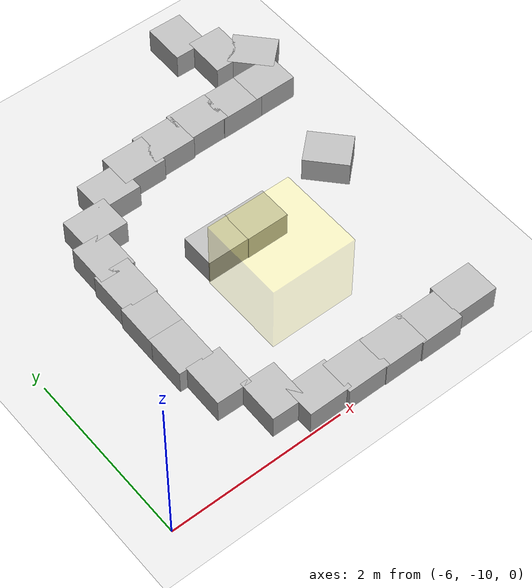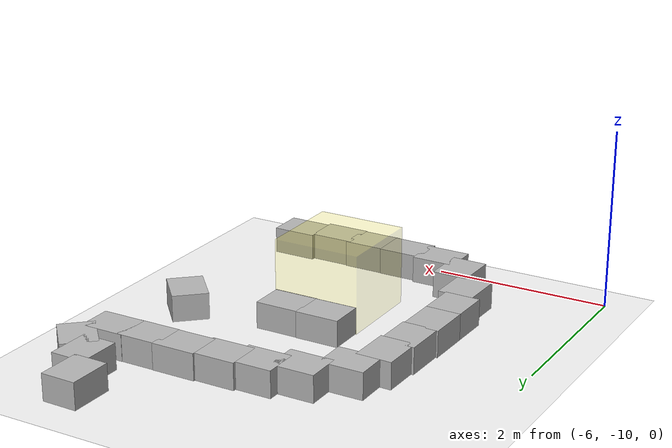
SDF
<sdf version="1.6">
 <world name="default">
  <model name="ground_plane">
   <static>1</static>
   <link name="link">
    <collision name="collision">
     <geometry><plane><normal>0 0 1</normal><size>100 100</size></plane></geometry>
     <surface>
      <contact><collide_bitmask>65535</collide_bitmask></contact>
      <friction><ode><mu>100</mu><mu2>50</mu2></ode></friction>
     </surface>
    </collision>
    <visual name="visual">
     <cast_shadows>0</cast_shadows>
     <geometry><plane><normal>0 0 1</normal><size>100 100</size></plane></geometry>
     <material>
      <script><uri>file://media/materials/scripts/gazebo.material</uri><name>Gazebo/Grey</name></script>
     </material>
    </visual>
   </link>
   <pose>0.215037 0.234206 0 0 -0 0</pose>
  </model>
  <model name="box_clone_3_clone_clone_3">
   <link name="cardboard_box_clone::link">
    <inertial>
     <mass>2</mass>
     <inertia>
      <ixx>0.0416667</ixx>
      <ixy>0</ixy>
      <ixz>0</ixz>
      <iyy>0.0566667</iyy>
      <iyz>0</iyz>
      <izz>0.0683333</izz>
     </inertia>
    </inertial>
    <visual name="visual">
     <pose>0 0 -0.15 0 -0 0</pose>
     <geometry>
      <mesh><uri>model://cardboard_box/meshes/cardboard_box.dae</uri><scale>1.25932 1.00745 0.755591</scale></mesh>
     </geometry>
    </visual>
    <collision name="collision">
     <geometry><box><size>0.5 0.4 0.3</size></box></geometry>
     <surface>
      <friction>
       <ode><mu>1</mu><mu2>1</mu2><fdir1>0 0 0</fdir1><slip1>0</slip1><slip2>0</slip2></ode>
       <torsional>
        <coefficient>1</coefficient>
        <patch_radius>0</patch_radius>
        <surface_radius>0</surface_radius>
        <use_patch_radius>1</use_patch_radius>
        <ode><slip>0</slip></ode>
       </torsional>
      </friction>
      <bounce><restitution_coefficient>0</restitution_coefficient><threshold>1e+06</threshold></bounce>
      <contact>
       <collide_without_contact>0</collide_without_contact>
       <collide_without_contact_bitmask>1</collide_without_contact_bitmask>
       <collide_bitmask>1</collide_bitmask>
       <ode>
        <soft_cfm>0</soft_cfm>
        <soft_erp>0.2</soft_erp>
        <kp>1e+07</kp>
        <kd>1</kd>
        <max_vel>0.1</max_vel>
        <min_depth>0.001</min_depth>
       </ode>
       <bullet>
        <split_impulse>1</split_impulse>
        <split_impulse_penetration_threshold>-0.01</split_impulse_penetration_threshold>
        <soft_cfm>0</soft_cfm>
        <soft_erp>0.2</soft_erp>
        <kp>1e+07</kp>
        <kd>1</kd>
       </bullet>
      </contact>
     </surface>
    </collision>
   </link>
   <static>1</static>
   <pose>-2.35637 -5.37175 0.149 0 -0 1.55153</pose>
  </model>
  <model name="box_clone_3_clone_clone_4">
   <link name="cardboard_box_clone::link">
    <inertial>
     <mass>2</mass>
     <inertia>
      <ixx>0.0416667</ixx>
      <ixy>0</ixy>
      <ixz>0</ixz>
      <iyy>0.0566667</iyy>
      <iyz>0</iyz>
      <izz>0.0683333</izz>
     </inertia>
    </inertial>
    <visual name="visual">
     <pose>0 0 -0.15 0 -0 0</pose>
     <geometry>
      <mesh><uri>model://cardboard_box/meshes/cardboard_box.dae</uri><scale>1.25932 1.00745 0.755591</scale></mesh>
     </geometry>
    </visual>
    <collision name="collision">
     <geometry><box><size>0.5 0.4 0.3</size></box></geometry>
     <surface>
      <friction>
       <ode><mu>1</mu><mu2>1</mu2><fdir1>0 0 0</fdir1><slip1>0</slip1><slip2>0</slip2></ode>
       <torsional>
        <coefficient>1</coefficient>
        <patch_radius>0</patch_radius>
        <surface_radius>0</surface_radius>
        <use_patch_radius>1</use_patch_radius>
        <ode><slip>0</slip></ode>
       </torsional>
      </friction>
      <bounce><restitution_coefficient>0</restitution_coefficient><threshold>1e+06</threshold></bounce>
      <contact>
       <collide_without_contact>0</collide_without_contact>
       <collide_without_contact_bitmask>1</collide_without_contact_bitmask>
       <collide_bitmask>1</collide_bitmask>
       <ode>
        <soft_cfm>0</soft_cfm>
        <soft_erp>0.2</soft_erp>
        <kp>1e+07</kp>
        <kd>1</kd>
        <max_vel>0.1</max_vel>
        <min_depth>0.001</min_depth>
       </ode>
       <bullet>
        <split_impulse>1</split_impulse>
        <split_impulse_penetration_threshold>-0.01</split_impulse_penetration_threshold>
        <soft_cfm>0</soft_cfm>
        <soft_erp>0.2</soft_erp>
        <kp>1e+07</kp>
        <kd>1</kd>
       </bullet>
      </contact>
     </surface>
    </collision>
   </link>
   <static>1</static>
   <pose>-2.13835 -5.78726 0.149 0 -0 1.55153</pose>
  </model>
  <model name="box_clone_3_clone_clone_clone_3_clone_clone_clone_0">
   <link name="cardboard_box_clone::link">
    <inertial>
     <mass>2</mass>
     <inertia>
      <ixx>0.0416667</ixx>
      <ixy>0</ixy>
      <ixz>0</ixz>
      <iyy>0.0566667</iyy>
      <iyz>0</iyz>
      <izz>0.0683333</izz>
     </inertia>
    </inertial>
    <visual name="visual">
     <pose>0 0 -0.15 0 -0 0</pose>
     <geometry>
      <mesh><uri>model://cardboard_box/meshes/cardboard_box.dae</uri><scale>1.25932 1.00745 0.755591</scale></mesh>
     </geometry>
    </visual>
    <collision name="collision">
     <geometry><box><size>0.5 0.4 0.3</size></box></geometry>
     <surface>
      <friction>
       <ode><mu>1</mu><mu2>1</mu2><fdir1>0 0 0</fdir1><slip1>0</slip1><slip2>0</slip2></ode>
       <torsional>
        <coefficient>1</coefficient>
        <patch_radius>0</patch_radius>
        <surface_radius>0</surface_radius>
        <use_patch_radius>1</use_patch_radius>
        <ode><slip>0</slip></ode>
       </torsional>
      </friction>
      <bounce><restitution_coefficient>0</restitution_coefficient><threshold>1e+06</threshold></bounce>
      <contact>
       <collide_without_contact>0</collide_without_contact>
       <collide_without_contact_bitmask>1</collide_without_contact_bitmask>
       <collide_bitmask>1</collide_bitmask>
       <ode>
        <soft_cfm>0</soft_cfm>
        <soft_erp>0.2</soft_erp>
        <kp>1e+07</kp>
        <kd>1</kd>
        <max_vel>0.1</max_vel>
        <min_depth>0.001</min_depth>
       </ode>
       <bullet>
        <split_impulse>1</split_impulse>
        <split_impulse_penetration_threshold>-0.01</split_impulse_penetration_threshold>
        <soft_cfm>0</soft_cfm>
        <soft_erp>0.2</soft_erp>
        <kp>1e+07</kp>
        <kd>1</kd>
       </bullet>
      </contact>
     </surface>
    </collision>
   </link>
   <static>1</static>
   <pose>-1.86034 -6.04029 0.149 0 -0 2.31083</pose>
  </model>
  <model name="box_clone_9_clone">
   <link name="cardboard_box_clone::link">
    <inertial>
     <mass>2</mass>
     <inertia>
      <ixx>0.0416667</ixx>
      <ixy>0</ixy>
      <ixz>0</ixz>
      <iyy>0.0566667</iyy>
      <iyz>0</iyz>
      <izz>0.0683333</izz>
     </inertia>
    </inertial>
    <visual name="visual">
     <pose>0 0 -0.15 0 -0 0</pose>
     <geometry>
      <mesh><uri>model://cardboard_box/meshes/cardboard_box.dae</uri><scale>1.25932 1.00745 0.755591</scale></mesh>
     </geometry>
    </visual>
    <collision name="collision">
     <geometry><box><size>0.5 0.4 0.3</size></box></geometry>
     <surface>
      <friction>
       <ode><mu>1</mu><mu2>1</mu2><fdir1>0 0 0</fdir1><slip1>0</slip1><slip2>0</slip2></ode>
       <torsional>
        <coefficient>1</coefficient>
        <patch_radius>0</patch_radius>
        <surface_radius>0</surface_radius>
        <use_patch_radius>1</use_patch_radius>
        <ode><slip>0</slip></ode>
       </torsional>
      </friction>
      <bounce><restitution_coefficient>0</restitution_coefficient><threshold>1e+06</threshold></bounce>
      <contact>
       <collide_without_contact>0</collide_without_contact>
       <collide_without_contact_bitmask>1</collide_without_contact_bitmask>
       <collide_bitmask>1</collide_bitmask>
       <ode>
        <soft_cfm>0</soft_cfm>
        <soft_erp>0.2</soft_erp>
        <kp>1e+07</kp>
        <kd>1</kd>
        <max_vel>0.1</max_vel>
        <min_depth>0.001</min_depth>
       </ode>
       <bullet>
        <split_impulse>1</split_impulse>
        <split_impulse_penetration_threshold>-0.01</split_impulse_penetration_threshold>
        <soft_cfm>0</soft_cfm>
        <soft_erp>0.2</soft_erp>
        <kp>1e+07</kp>
        <kd>1</kd>
       </bullet>
      </contact>
     </surface>
    </collision>
   </link>
   <static>1</static>
   <pose>-2.02375 -6.4146 0.149 0 -0 0</pose>
  </model>
  <model name="RegionEventBox_clone_0_clone_clone_0_clone_clone_clone">
   <static>1</static>
   <pose>-3.49818 -8.49725 0 0 -0 0</pose>
   <link name="link">
    <visual name="visual">
     <transparency>0.75</transparency>
     <geometry><box><size>1 1 1.75</size></box></geometry>
     <material>
      <script><uri>file://media/materials/scripts/gazebo.material</uri><name>Gazebo/Yellow</name></script>
     </material>
    </visual>
   </link>
   <plugin name="region_event_box" filename="libRegionEventBoxPlugin.so">
    <event><name>model_in_region_event_box</name><type>inclusion</type><active>1</active></event>
   </plugin>
  </model>
  <model name="box_clone_3_clone_clone_clone_3_clone_clone_clone_2_clone">
   <link name="cardboard_box_clone::link">
    <inertial>
     <mass>2</mass>
     <inertia>
      <ixx>0.0416667</ixx>
      <ixy>0</ixy>
      <ixz>0</ixz>
      <iyy>0.0566667</iyy>
      <iyz>0</iyz>
      <izz>0.0683333</izz>
     </inertia>
    </inertial>
    <visual name="visual">
     <pose>0 0 -0.15 0 -0 0</pose>
     <geometry>
      <mesh><uri>model://cardboard_box/meshes/cardboard_box.dae</uri><scale>1.25932 1.00745 0.755591</scale></mesh>
     </geometry>
    </visual>
    <collision name="collision">
     <geometry><box><size>0.5 0.4 0.3</size></box></geometry>
     <surface>
      <friction>
       <ode><mu>1</mu><mu2>1</mu2><fdir1>0 0 0</fdir1><slip1>0</slip1><slip2>0</slip2></ode>
       <torsional>
        <coefficient>1</coefficient>
        <patch_radius>0</patch_radius>
        <surface_radius>0</surface_radius>
        <use_patch_radius>1</use_patch_radius>
        <ode><slip>0</slip></ode>
       </torsional>
      </friction>
      <bounce><restitution_coefficient>0</restitution_coefficient><threshold>1e+06</threshold></bounce>
      <contact>
       <collide_without_contact>0</collide_without_contact>
       <collide_without_contact_bitmask>1</collide_without_contact_bitmask>
       <collide_bitmask>1</collide_bitmask>
       <ode>
        <soft_cfm>0</soft_cfm>
        <soft_erp>0.2</soft_erp>
        <kp>1e+07</kp>
        <kd>1</kd>
        <max_vel>0.1</max_vel>
        <min_depth>0.001</min_depth>
       </ode>
       <bullet>
        <split_impulse>1</split_impulse>
        <split_impulse_penetration_threshold>-0.01</split_impulse_penetration_threshold>
        <soft_cfm>0</soft_cfm>
        <soft_erp>0.2</soft_erp>
        <kp>1e+07</kp>
        <kd>1</kd>
       </bullet>
      </contact>
     </surface>
    </collision>
   </link>
   <static>1</static>
   <pose>-2.12273 -7.59657 0.149 0 -0 2.31083</pose>
  </model>
  <model name="box_clone_12">
   <link name="cardboard_box_clone::link">
    <inertial>
     <mass>2</mass>
     <inertia>
      <ixx>0.0416667</ixx>
      <ixy>0</ixy>
      <ixz>0</ixz>
      <iyy>0.0566667</iyy>
      <iyz>0</iyz>
      <izz>0.0683333</izz>
     </inertia>
    </inertial>
    <visual name="visual">
     <pose>0 0 -0.15 0 -0 0</pose>
     <geometry>
      <mesh><uri>model://cardboard_box/meshes/cardboard_box.dae</uri><scale>1.25932 1.00745 0.755591</scale></mesh>
     </geometry>
    </visual>
    <collision name="collision">
     <geometry><box><size>0.5 0.4 0.3</size></box></geometry>
     <surface>
      <friction>
       <ode><mu>1</mu><mu2>1</mu2><fdir1>0 0 0</fdir1><slip1>0</slip1><slip2>0</slip2></ode>
       <torsional>
        <coefficient>1</coefficient>
        <patch_radius>0</patch_radius>
        <surface_radius>0</surface_radius>
        <use_patch_radius>1</use_patch_radius>
        <ode><slip>0</slip></ode>
       </torsional>
      </friction>
      <bounce><restitution_coefficient>0</restitution_coefficient><threshold>1e+06</threshold></bounce>
      <contact>
       <collide_without_contact>0</collide_without_contact>
       <collide_without_contact_bitmask>1</collide_without_contact_bitmask>
       <collide_bitmask>1</collide_bitmask>
       <ode>
        <soft_cfm>0</soft_cfm>
        <soft_erp>0.2</soft_erp>
        <kp>1e+07</kp>
        <kd>1</kd>
        <max_vel>0.1</max_vel>
        <min_depth>0.001</min_depth>
       </ode>
       <bullet>
        <split_impulse>1</split_impulse>
        <split_impulse_penetration_threshold>-0.01</split_impulse_penetration_threshold>
        <soft_cfm>0</soft_cfm>
        <soft_erp>0.2</soft_erp>
        <kp>1e+07</kp>
        <kd>1</kd>
       </bullet>
      </contact>
     </surface>
    </collision>
   </link>
   <static>1</static>
   <pose>-2.4599 -6.41716 0.149 0 -0 0</pose>
  </model>
  <model name="box_clone_13">
   <link name="cardboard_box_clone::link">
    <inertial>
     <mass>2</mass>
     <inertia>
      <ixx>0.0416667</ixx>
      <ixy>0</ixy>
      <ixz>0</ixz>
      <iyy>0.0566667</iyy>
      <iyz>0</iyz>
      <izz>0.0683333</izz>
     </inertia>
    </inertial>
    <visual name="visual">
     <pose>0 0 -0.15 0 -0 0</pose>
     <geometry>
      <mesh><uri>model://cardboard_box/meshes/cardboard_box.dae</uri><scale>1.25932 1.00745 0.755591</scale></mesh>
     </geometry>
    </visual>
    <collision name="collision">
     <geometry><box><size>0.5 0.4 0.3</size></box></geometry>
     <surface>
      <friction>
       <ode><mu>1</mu><mu2>1</mu2><fdir1>0 0 0</fdir1><slip1>0</slip1><slip2>0</slip2></ode>
       <torsional>
        <coefficient>1</coefficient>
        <patch_radius>0</patch_radius>
        <surface_radius>0</surface_radius>
        <use_patch_radius>1</use_patch_radius>
        <ode><slip>0</slip></ode>
       </torsional>
      </friction>
      <bounce><restitution_coefficient>0</restitution_coefficient><threshold>1e+06</threshold></bounce>
      <contact>
       <collide_without_contact>0</collide_without_contact>
       <collide_without_contact_bitmask>1</collide_without_contact_bitmask>
       <collide_bitmask>1</collide_bitmask>
       <ode>
        <soft_cfm>0</soft_cfm>
        <soft_erp>0.2</soft_erp>
        <kp>1e+07</kp>
        <kd>1</kd>
        <max_vel>0.1</max_vel>
        <min_depth>0.001</min_depth>
       </ode>
       <bullet>
        <split_impulse>1</split_impulse>
        <split_impulse_penetration_threshold>-0.01</split_impulse_penetration_threshold>
        <soft_cfm>0</soft_cfm>
        <soft_erp>0.2</soft_erp>
        <kp>1e+07</kp>
        <kd>1</kd>
       </bullet>
      </contact>
     </surface>
    </collision>
   </link>
   <static>1</static>
   <pose>-2.90832 -6.41201 0.149 0 -0 0</pose>
  </model>
  <model name="box_clone_14">
   <link name="cardboard_box_clone::link">
    <inertial>
     <mass>2</mass>
     <inertia>
      <ixx>0.0416667</ixx>
      <ixy>0</ixy>
      <ixz>0</ixz>
      <iyy>0.0566667</iyy>
      <iyz>0</iyz>
      <izz>0.0683333</izz>
     </inertia>
    </inertial>
    <visual name="visual">
     <pose>0 0 -0.15 0 -0 0</pose>
     <geometry>
      <mesh><uri>model://cardboard_box/meshes/cardboard_box.dae</uri><scale>1.25932 1.00745 0.755591</scale></mesh>
     </geometry>
    </visual>
    <collision name="collision">
     <geometry><box><size>0.5 0.4 0.3</size></box></geometry>
     <surface>
      <friction>
       <ode><mu>1</mu><mu2>1</mu2><fdir1>0 0 0</fdir1><slip1>0</slip1><slip2>0</slip2></ode>
       <torsional>
        <coefficient>1</coefficient>
        <patch_radius>0</patch_radius>
        <surface_radius>0</surface_radius>
        <use_patch_radius>1</use_patch_radius>
        <ode><slip>0</slip></ode>
       </torsional>
      </friction>
      <bounce><restitution_coefficient>0</restitution_coefficient><threshold>1e+06</threshold></bounce>
      <contact>
       <collide_without_contact>0</collide_without_contact>
       <collide_without_contact_bitmask>1</collide_without_contact_bitmask>
       <collide_bitmask>1</collide_bitmask>
       <ode>
        <soft_cfm>0</soft_cfm>
        <soft_erp>0.2</soft_erp>
        <kp>1e+07</kp>
        <kd>1</kd>
        <max_vel>0.1</max_vel>
        <min_depth>0.001</min_depth>
       </ode>
       <bullet>
        <split_impulse>1</split_impulse>
        <split_impulse_penetration_threshold>-0.01</split_impulse_penetration_threshold>
        <soft_cfm>0</soft_cfm>
        <soft_erp>0.2</soft_erp>
        <kp>1e+07</kp>
        <kd>1</kd>
       </bullet>
      </contact>
     </surface>
    </collision>
   </link>
   <static>1</static>
   <pose>-3.36792 -6.43187 0.149 0 -0 0</pose>
  </model>
  <model name="box_clone_15">
   <link name="cardboard_box_clone::link">
    <inertial>
     <mass>2</mass>
     <inertia>
      <ixx>0.0416667</ixx>
      <ixy>0</ixy>
      <ixz>0</ixz>
      <iyy>0.0566667</iyy>
      <iyz>0</iyz>
      <izz>0.0683333</izz>
     </inertia>
    </inertial>
    <visual name="visual">
     <pose>0 0 -0.15 0 -0 0</pose>
     <geometry>
      <mesh><uri>model://cardboard_box/meshes/cardboard_box.dae</uri><scale>1.25932 1.00745 0.755591</scale></mesh>
     </geometry>
    </visual>
    <collision name="collision">
     <geometry><box><size>0.5 0.4 0.3</size></box></geometry>
     <surface>
      <friction>
       <ode><mu>1</mu><mu2>1</mu2><fdir1>0 0 0</fdir1><slip1>0</slip1><slip2>0</slip2></ode>
       <torsional>
        <coefficient>1</coefficient>
        <patch_radius>0</patch_radius>
        <surface_radius>0</surface_radius>
        <use_patch_radius>1</use_patch_radius>
        <ode><slip>0</slip></ode>
       </torsional>
      </friction>
      <bounce><restitution_coefficient>0</restitution_coefficient><threshold>1e+06</threshold></bounce>
      <contact>
       <collide_without_contact>0</collide_without_contact>
       <collide_without_contact_bitmask>1</collide_without_contact_bitmask>
       <collide_bitmask>1</collide_bitmask>
       <ode>
        <soft_cfm>0</soft_cfm>
        <soft_erp>0.2</soft_erp>
        <kp>1e+07</kp>
        <kd>1</kd>
        <max_vel>0.1</max_vel>
        <min_depth>0.001</min_depth>
       </ode>
       <bullet>
        <split_impulse>1</split_impulse>
        <split_impulse_penetration_threshold>-0.01</split_impulse_penetration_threshold>
        <soft_cfm>0</soft_cfm>
        <soft_erp>0.2</soft_erp>
        <kp>1e+07</kp>
        <kd>1</kd>
       </bullet>
      </contact>
     </surface>
    </collision>
   </link>
   <static>1</static>
   <pose>-3.7722 -6.46677 0.149 0 -0 0</pose>
  </model>
  <model name="box_clone_16">
   <link name="cardboard_box_clone::link">
    <inertial>
     <mass>2</mass>
     <inertia>
      <ixx>0.0416667</ixx>
      <ixy>0</ixy>
      <ixz>0</ixz>
      <iyy>0.0566667</iyy>
      <iyz>0</iyz>
      <izz>0.0683333</izz>
     </inertia>
    </inertial>
    <visual name="visual">
     <pose>0 0 -0.15 0 -0 0</pose>
     <geometry>
      <mesh><uri>model://cardboard_box/meshes/cardboard_box.dae</uri><scale>1.25932 1.00745 0.755591</scale></mesh>
     </geometry>
    </visual>
    <collision name="collision">
     <geometry><box><size>0.5 0.4 0.3</size></box></geometry>
     <surface>
      <friction>
       <ode><mu>1</mu><mu2>1</mu2><fdir1>0 0 0</fdir1><slip1>0</slip1><slip2>0</slip2></ode>
       <torsional>
        <coefficient>1</coefficient>
        <patch_radius>0</patch_radius>
        <surface_radius>0</surface_radius>
        <use_patch_radius>1</use_patch_radius>
        <ode><slip>0</slip></ode>
       </torsional>
      </friction>
      <bounce><restitution_coefficient>0</restitution_coefficient><threshold>1e+06</threshold></bounce>
      <contact>
       <collide_without_contact>0</collide_without_contact>
       <collide_without_contact_bitmask>1</collide_without_contact_bitmask>
       <collide_bitmask>1</collide_bitmask>
       <ode>
        <soft_cfm>0</soft_cfm>
        <soft_erp>0.2</soft_erp>
        <kp>1e+07</kp>
        <kd>1</kd>
        <max_vel>0.1</max_vel>
        <min_depth>0.001</min_depth>
       </ode>
       <bullet>
        <split_impulse>1</split_impulse>
        <split_impulse_penetration_threshold>-0.01</split_impulse_penetration_threshold>
        <soft_cfm>0</soft_cfm>
        <soft_erp>0.2</soft_erp>
        <kp>1e+07</kp>
        <kd>1</kd>
       </bullet>
      </contact>
     </surface>
    </collision>
   </link>
   <static>1</static>
   <pose>-4.18047 -6.58991 0.149 0 -0 0</pose>
  </model>
  <model name="box_clone_17">
   <link name="cardboard_box_clone::link">
    <inertial>
     <mass>2</mass>
     <inertia>
      <ixx>0.0416667</ixx>
      <ixy>0</ixy>
      <ixz>0</ixz>
      <iyy>0.0566667</iyy>
      <iyz>0</iyz>
      <izz>0.0683333</izz>
     </inertia>
    </inertial>
    <visual name="visual">
     <pose>0 0 -0.15 0 -0 0</pose>
     <geometry>
      <mesh><uri>model://cardboard_box/meshes/cardboard_box.dae</uri><scale>1.25932 1.00745 0.755591</scale></mesh>
     </geometry>
    </visual>
    <collision name="collision">
     <geometry><box><size>0.5 0.4 0.3</size></box></geometry>
     <surface>
      <friction>
       <ode><mu>1</mu><mu2>1</mu2><fdir1>0 0 0</fdir1><slip1>0</slip1><slip2>0</slip2></ode>
       <torsional>
        <coefficient>1</coefficient>
        <patch_radius>0</patch_radius>
        <surface_radius>0</surface_radius>
        <use_patch_radius>1</use_patch_radius>
        <ode><slip>0</slip></ode>
       </torsional>
      </friction>
      <bounce><restitution_coefficient>0</restitution_coefficient><threshold>1e+06</threshold></bounce>
      <contact>
       <collide_without_contact>0</collide_without_contact>
       <collide_without_contact_bitmask>1</collide_without_contact_bitmask>
       <collide_bitmask>1</collide_bitmask>
       <ode>
        <soft_cfm>0</soft_cfm>
        <soft_erp>0.2</soft_erp>
        <kp>1e+07</kp>
        <kd>1</kd>
        <max_vel>0.1</max_vel>
        <min_depth>0.001</min_depth>
       </ode>
       <bullet>
        <split_impulse>1</split_impulse>
        <split_impulse_penetration_threshold>-0.01</split_impulse_penetration_threshold>
        <soft_cfm>0</soft_cfm>
        <soft_erp>0.2</soft_erp>
        <kp>1e+07</kp>
        <kd>1</kd>
       </bullet>
      </contact>
     </surface>
    </collision>
   </link>
   <static>1</static>
   <pose>-4.56066 -6.88099 0.149 0 -0 0</pose>
  </model>
  <model name="box_clone_3_clone_clone_5">
   <link name="cardboard_box_clone::link">
    <inertial>
     <mass>2</mass>
     <inertia>
      <ixx>0.0416667</ixx>
      <ixy>0</ixy>
      <ixz>0</ixz>
      <iyy>0.0566667</iyy>
      <iyz>0</iyz>
      <izz>0.0683333</izz>
     </inertia>
    </inertial>
    <visual name="visual">
     <pose>0 0 -0.15 0 -0 0</pose>
     <geometry>
      <mesh><uri>model://cardboard_box/meshes/cardboard_box.dae</uri><scale>1.25932 1.00745 0.755591</scale></mesh>
     </geometry>
    </visual>
    <collision name="collision">
     <geometry><box><size>0.5 0.4 0.3</size></box></geometry>
     <surface>
      <friction>
       <ode><mu>1</mu><mu2>1</mu2><fdir1>0 0 0</fdir1><slip1>0</slip1><slip2>0</slip2></ode>
       <torsional>
        <coefficient>1</coefficient>
        <patch_radius>0</patch_radius>
        <surface_radius>0</surface_radius>
        <use_patch_radius>1</use_patch_radius>
        <ode><slip>0</slip></ode>
       </torsional>
      </friction>
      <bounce><restitution_coefficient>0</restitution_coefficient><threshold>1e+06</threshold></bounce>
      <contact>
       <collide_without_contact>0</collide_without_contact>
       <collide_without_contact_bitmask>1</collide_without_contact_bitmask>
       <collide_bitmask>1</collide_bitmask>
       <ode>
        <soft_cfm>0</soft_cfm>
        <soft_erp>0.2</soft_erp>
        <kp>1e+07</kp>
        <kd>1</kd>
        <max_vel>0.1</max_vel>
        <min_depth>0.001</min_depth>
       </ode>
       <bullet>
        <split_impulse>1</split_impulse>
        <split_impulse_penetration_threshold>-0.01</split_impulse_penetration_threshold>
        <soft_cfm>0</soft_cfm>
        <soft_erp>0.2</soft_erp>
        <kp>1e+07</kp>
        <kd>1</kd>
       </bullet>
      </contact>
     </surface>
    </collision>
   </link>
   <static>1</static>
   <pose>-4.74217 -7.27077 0.149 0 -0 1.55153</pose>
  </model>
  <model name="box_clone_3_clone_clone_6">
   <link name="cardboard_box_clone::link">
    <inertial>
     <mass>2</mass>
     <inertia>
      <ixx>0.0416667</ixx>
      <ixy>0</ixy>
      <ixz>0</ixz>
      <iyy>0.0566667</iyy>
      <iyz>0</iyz>
      <izz>0.0683333</izz>
     </inertia>
    </inertial>
    <visual name="visual">
     <pose>0 0 -0.15 0 -0 0</pose>
     <geometry>
      <mesh><uri>model://cardboard_box/meshes/cardboard_box.dae</uri><scale>1.25932 1.00745 0.755591</scale></mesh>
     </geometry>
    </visual>
    <collision name="collision">
     <geometry><box><size>0.5 0.4 0.3</size></box></geometry>
     <surface>
      <friction>
       <ode><mu>1</mu><mu2>1</mu2><fdir1>0 0 0</fdir1><slip1>0</slip1><slip2>0</slip2></ode>
       <torsional>
        <coefficient>1</coefficient>
        <patch_radius>0</patch_radius>
        <surface_radius>0</surface_radius>
        <use_patch_radius>1</use_patch_radius>
        <ode><slip>0</slip></ode>
       </torsional>
      </friction>
      <bounce><restitution_coefficient>0</restitution_coefficient><threshold>1e+06</threshold></bounce>
      <contact>
       <collide_without_contact>0</collide_without_contact>
       <collide_without_contact_bitmask>1</collide_without_contact_bitmask>
       <collide_bitmask>1</collide_bitmask>
       <ode>
        <soft_cfm>0</soft_cfm>
        <soft_erp>0.2</soft_erp>
        <kp>1e+07</kp>
        <kd>1</kd>
        <max_vel>0.1</max_vel>
        <min_depth>0.001</min_depth>
       </ode>
       <bullet>
        <split_impulse>1</split_impulse>
        <split_impulse_penetration_threshold>-0.01</split_impulse_penetration_threshold>
        <soft_cfm>0</soft_cfm>
        <soft_erp>0.2</soft_erp>
        <kp>1e+07</kp>
        <kd>1</kd>
       </bullet>
      </contact>
     </surface>
    </collision>
   </link>
   <static>1</static>
   <pose>-4.77673 -7.68249 0.149 0 -0 1.55153</pose>
  </model>
  <model name="box_clone_3_clone_clone_7">
   <link name="cardboard_box_clone::link">
    <inertial>
     <mass>2</mass>
     <inertia>
      <ixx>0.0416667</ixx>
      <ixy>0</ixy>
      <ixz>0</ixz>
      <iyy>0.0566667</iyy>
      <iyz>0</iyz>
      <izz>0.0683333</izz>
     </inertia>
    </inertial>
    <visual name="visual">
     <pose>0 0 -0.15 0 -0 0</pose>
     <geometry>
      <mesh><uri>model://cardboard_box/meshes/cardboard_box.dae</uri><scale>1.25932 1.00745 0.755591</scale></mesh>
     </geometry>
    </visual>
    <collision name="collision">
     <geometry><box><size>0.5 0.4 0.3</size></box></geometry>
     <surface>
      <friction>
       <ode><mu>1</mu><mu2>1</mu2><fdir1>0 0 0</fdir1><slip1>0</slip1><slip2>0</slip2></ode>
       <torsional>
        <coefficient>1</coefficient>
        <patch_radius>0</patch_radius>
        <surface_radius>0</surface_radius>
        <use_patch_radius>1</use_patch_radius>
        <ode><slip>0</slip></ode>
       </torsional>
      </friction>
      <bounce><restitution_coefficient>0</restitution_coefficient><threshold>1e+06</threshold></bounce>
      <contact>
       <collide_without_contact>0</collide_without_contact>
       <collide_without_contact_bitmask>1</collide_without_contact_bitmask>
       <collide_bitmask>1</collide_bitmask>
       <ode>
        <soft_cfm>0</soft_cfm>
        <soft_erp>0.2</soft_erp>
        <kp>1e+07</kp>
        <kd>1</kd>
        <max_vel>0.1</max_vel>
        <min_depth>0.001</min_depth>
       </ode>
       <bullet>
        <split_impulse>1</split_impulse>
        <split_impulse_penetration_threshold>-0.01</split_impulse_penetration_threshold>
        <soft_cfm>0</soft_cfm>
        <soft_erp>0.2</soft_erp>
        <kp>1e+07</kp>
        <kd>1</kd>
       </bullet>
      </contact>
     </surface>
    </collision>
   </link>
   <static>1</static>
   <pose>-4.80347 -8.15577 0.149 0 -0 1.55153</pose>
  </model>
  <model name="box_clone_3_clone_clone_8">
   <link name="cardboard_box_clone::link">
    <inertial>
     <mass>2</mass>
     <inertia>
      <ixx>0.0416667</ixx>
      <ixy>0</ixy>
      <ixz>0</ixz>
      <iyy>0.0566667</iyy>
      <iyz>0</iyz>
      <izz>0.0683333</izz>
     </inertia>
    </inertial>
    <visual name="visual">
     <pose>0 0 -0.15 0 -0 0</pose>
     <geometry>
      <mesh><uri>model://cardboard_box/meshes/cardboard_box.dae</uri><scale>1.25932 1.00745 0.755591</scale></mesh>
     </geometry>
    </visual>
    <collision name="collision">
     <geometry><box><size>0.5 0.4 0.3</size></box></geometry>
     <surface>
      <friction>
       <ode><mu>1</mu><mu2>1</mu2><fdir1>0 0 0</fdir1><slip1>0</slip1><slip2>0</slip2></ode>
       <torsional>
        <coefficient>1</coefficient>
        <patch_radius>0</patch_radius>
        <surface_radius>0</surface_radius>
        <use_patch_radius>1</use_patch_radius>
        <ode><slip>0</slip></ode>
       </torsional>
      </friction>
      <bounce><restitution_coefficient>0</restitution_coefficient><threshold>1e+06</threshold></bounce>
      <contact>
       <collide_without_contact>0</collide_without_contact>
       <collide_without_contact_bitmask>1</collide_without_contact_bitmask>
       <collide_bitmask>1</collide_bitmask>
       <ode>
        <soft_cfm>0</soft_cfm>
        <soft_erp>0.2</soft_erp>
        <kp>1e+07</kp>
        <kd>1</kd>
        <max_vel>0.1</max_vel>
        <min_depth>0.001</min_depth>
       </ode>
       <bullet>
        <split_impulse>1</split_impulse>
        <split_impulse_penetration_threshold>-0.01</split_impulse_penetration_threshold>
        <soft_cfm>0</soft_cfm>
        <soft_erp>0.2</soft_erp>
        <kp>1e+07</kp>
        <kd>1</kd>
       </bullet>
      </contact>
     </surface>
    </collision>
   </link>
   <static>1</static>
   <pose>-4.81156 -8.60433 0.149 0 -0 1.55153</pose>
  </model>
  <model name="box_clone_3_clone_clone_9">
   <link name="cardboard_box_clone::link">
    <inertial>
     <mass>2</mass>
     <inertia>
      <ixx>0.0416667</ixx>
      <ixy>0</ixy>
      <ixz>0</ixz>
      <iyy>0.0566667</iyy>
      <iyz>0</iyz>
      <izz>0.0683333</izz>
     </inertia>
    </inertial>
    <visual name="visual">
     <pose>0 0 -0.15 0 -0 0</pose>
     <geometry>
      <mesh><uri>model://cardboard_box/meshes/cardboard_box.dae</uri><scale>1.25932 1.00745 0.755591</scale></mesh>
     </geometry>
    </visual>
    <collision name="collision">
     <geometry><box><size>0.5 0.4 0.3</size></box></geometry>
     <surface>
      <friction>
       <ode><mu>1</mu><mu2>1</mu2><fdir1>0 0 0</fdir1><slip1>0</slip1><slip2>0</slip2></ode>
       <torsional>
        <coefficient>1</coefficient>
        <patch_radius>0</patch_radius>
        <surface_radius>0</surface_radius>
        <use_patch_radius>1</use_patch_radius>
        <ode><slip>0</slip></ode>
       </torsional>
      </friction>
      <bounce><restitution_coefficient>0</restitution_coefficient><threshold>1e+06</threshold></bounce>
      <contact>
       <collide_without_contact>0</collide_without_contact>
       <collide_without_contact_bitmask>1</collide_without_contact_bitmask>
       <collide_bitmask>1</collide_bitmask>
       <ode>
        <soft_cfm>0</soft_cfm>
        <soft_erp>0.2</soft_erp>
        <kp>1e+07</kp>
        <kd>1</kd>
        <max_vel>0.1</max_vel>
        <min_depth>0.001</min_depth>
       </ode>
       <bullet>
        <split_impulse>1</split_impulse>
        <split_impulse_penetration_threshold>-0.01</split_impulse_penetration_threshold>
        <soft_cfm>0</soft_cfm>
        <soft_erp>0.2</soft_erp>
        <kp>1e+07</kp>
        <kd>1</kd>
       </bullet>
      </contact>
     </surface>
    </collision>
   </link>
   <static>1</static>
   <pose>-4.73506 -9.08568 0.149 0 -0 1.55153</pose>
  </model>
  <model name="box_clone_3_clone_clone_10">
   <link name="cardboard_box_clone::link">
    <inertial>
     <mass>2</mass>
     <inertia>
      <ixx>0.0416667</ixx>
      <ixy>0</ixy>
      <ixz>0</ixz>
      <iyy>0.0566667</iyy>
      <iyz>0</iyz>
      <izz>0.0683333</izz>
     </inertia>
    </inertial>
    <visual name="visual">
     <pose>0 0 -0.15 0 -0 0</pose>
     <geometry>
      <mesh><uri>model://cardboard_box/meshes/cardboard_box.dae</uri><scale>1.25932 1.00745 0.755591</scale></mesh>
     </geometry>
    </visual>
    <collision name="collision">
     <geometry><box><size>0.5 0.4 0.3</size></box></geometry>
     <surface>
      <friction>
       <ode><mu>1</mu><mu2>1</mu2><fdir1>0 0 0</fdir1><slip1>0</slip1><slip2>0</slip2></ode>
       <torsional>
        <coefficient>1</coefficient>
        <patch_radius>0</patch_radius>
        <surface_radius>0</surface_radius>
        <use_patch_radius>1</use_patch_radius>
        <ode><slip>0</slip></ode>
       </torsional>
      </friction>
      <bounce><restitution_coefficient>0</restitution_coefficient><threshold>1e+06</threshold></bounce>
      <contact>
       <collide_without_contact>0</collide_without_contact>
       <collide_without_contact_bitmask>1</collide_without_contact_bitmask>
       <collide_bitmask>1</collide_bitmask>
       <ode>
        <soft_cfm>0</soft_cfm>
        <soft_erp>0.2</soft_erp>
        <kp>1e+07</kp>
        <kd>1</kd>
        <max_vel>0.1</max_vel>
        <min_depth>0.001</min_depth>
       </ode>
       <bullet>
        <split_impulse>1</split_impulse>
        <split_impulse_penetration_threshold>-0.01</split_impulse_penetration_threshold>
        <soft_cfm>0</soft_cfm>
        <soft_erp>0.2</soft_erp>
        <kp>1e+07</kp>
        <kd>1</kd>
       </bullet>
      </contact>
     </surface>
    </collision>
   </link>
   <static>1</static>
   <pose>-4.44502 -9.54578 0.149 0 -0 1.55153</pose>
  </model>
  <model name="box_clone_18">
   <link name="cardboard_box_clone::link">
    <inertial>
     <mass>2</mass>
     <inertia>
      <ixx>0.0416667</ixx>
      <ixy>0</ixy>
      <ixz>0</ixz>
      <iyy>0.0566667</iyy>
      <iyz>0</iyz>
      <izz>0.0683333</izz>
     </inertia>
    </inertial>
    <visual name="visual">
     <pose>0 0 -0.15 0 -0 0</pose>
     <geometry>
      <mesh><uri>model://cardboard_box/meshes/cardboard_box.dae</uri><scale>1.25932 1.00745 0.755591</scale></mesh>
     </geometry>
    </visual>
    <collision name="collision">
     <geometry><box><size>0.5 0.4 0.3</size></box></geometry>
     <surface>
      <friction>
       <ode><mu>1</mu><mu2>1</mu2><fdir1>0 0 0</fdir1><slip1>0</slip1><slip2>0</slip2></ode>
       <torsional>
        <coefficient>1</coefficient>
        <patch_radius>0</patch_radius>
        <surface_radius>0</surface_radius>
        <use_patch_radius>1</use_patch_radius>
        <ode><slip>0</slip></ode>
       </torsional>
      </friction>
      <bounce><restitution_coefficient>0</restitution_coefficient><threshold>1e+06</threshold></bounce>
      <contact>
       <collide_without_contact>0</collide_without_contact>
       <collide_without_contact_bitmask>1</collide_without_contact_bitmask>
       <collide_bitmask>1</collide_bitmask>
       <ode>
        <soft_cfm>0</soft_cfm>
        <soft_erp>0.2</soft_erp>
        <kp>1e+07</kp>
        <kd>1</kd>
        <max_vel>0.1</max_vel>
        <min_depth>0.001</min_depth>
       </ode>
       <bullet>
        <split_impulse>1</split_impulse>
        <split_impulse_penetration_threshold>-0.01</split_impulse_penetration_threshold>
        <soft_cfm>0</soft_cfm>
        <soft_erp>0.2</soft_erp>
        <kp>1e+07</kp>
        <kd>1</kd>
       </bullet>
      </contact>
     </surface>
    </collision>
   </link>
   <static>1</static>
   <pose>-4.09684 -9.77326 0.149 0 -0 0</pose>
  </model>
  <model name="box_clone_19">
   <link name="cardboard_box_clone::link">
    <inertial>
     <mass>2</mass>
     <inertia>
      <ixx>0.0416667</ixx>
      <ixy>0</ixy>
      <ixz>0</ixz>
      <iyy>0.0566667</iyy>
      <iyz>0</iyz>
      <izz>0.0683333</izz>
     </inertia>
    </inertial>
    <visual name="visual">
     <pose>0 0 -0.15 0 -0 0</pose>
     <geometry>
      <mesh><uri>model://cardboard_box/meshes/cardboard_box.dae</uri><scale>1.25932 1.00745 0.755591</scale></mesh>
     </geometry>
    </visual>
    <collision name="collision">
     <geometry><box><size>0.5 0.4 0.3</size></box></geometry>
     <surface>
      <friction>
       <ode><mu>1</mu><mu2>1</mu2><fdir1>0 0 0</fdir1><slip1>0</slip1><slip2>0</slip2></ode>
       <torsional>
        <coefficient>1</coefficient>
        <patch_radius>0</patch_radius>
        <surface_radius>0</surface_radius>
        <use_patch_radius>1</use_patch_radius>
        <ode><slip>0</slip></ode>
       </torsional>
      </friction>
      <bounce><restitution_coefficient>0</restitution_coefficient><threshold>1e+06</threshold></bounce>
      <contact>
       <collide_without_contact>0</collide_without_contact>
       <collide_without_contact_bitmask>1</collide_without_contact_bitmask>
       <collide_bitmask>1</collide_bitmask>
       <ode>
        <soft_cfm>0</soft_cfm>
        <soft_erp>0.2</soft_erp>
        <kp>1e+07</kp>
        <kd>1</kd>
        <max_vel>0.1</max_vel>
        <min_depth>0.001</min_depth>
       </ode>
       <bullet>
        <split_impulse>1</split_impulse>
        <split_impulse_penetration_threshold>-0.01</split_impulse_penetration_threshold>
        <soft_cfm>0</soft_cfm>
        <soft_erp>0.2</soft_erp>
        <kp>1e+07</kp>
        <kd>1</kd>
       </bullet>
      </contact>
     </surface>
    </collision>
   </link>
   <static>1</static>
   <pose>-3.65315 -9.80937 0.149 0 -0 0</pose>
  </model>
  <model name="box_clone_20">
   <link name="cardboard_box_clone::link">
    <inertial>
     <mass>2</mass>
     <inertia>
      <ixx>0.0416667</ixx>
      <ixy>0</ixy>
      <ixz>0</ixz>
      <iyy>0.0566667</iyy>
      <iyz>0</iyz>
      <izz>0.0683333</izz>
     </inertia>
    </inertial>
    <visual name="visual">
     <pose>0 0 -0.15 0 -0 0</pose>
     <geometry>
      <mesh><uri>model://cardboard_box/meshes/cardboard_box.dae</uri><scale>1.25932 1.00745 0.755591</scale></mesh>
     </geometry>
    </visual>
    <collision name="collision">
     <geometry><box><size>0.5 0.4 0.3</size></box></geometry>
     <surface>
      <friction>
       <ode><mu>1</mu><mu2>1</mu2><fdir1>0 0 0</fdir1><slip1>0</slip1><slip2>0</slip2></ode>
       <torsional>
        <coefficient>1</coefficient>
        <patch_radius>0</patch_radius>
        <surface_radius>0</surface_radius>
        <use_patch_radius>1</use_patch_radius>
        <ode><slip>0</slip></ode>
       </torsional>
      </friction>
      <bounce><restitution_coefficient>0</restitution_coefficient><threshold>1e+06</threshold></bounce>
      <contact>
       <collide_without_contact>0</collide_without_contact>
       <collide_without_contact_bitmask>1</collide_without_contact_bitmask>
       <collide_bitmask>1</collide_bitmask>
       <ode>
        <soft_cfm>0</soft_cfm>
        <soft_erp>0.2</soft_erp>
        <kp>1e+07</kp>
        <kd>1</kd>
        <max_vel>0.1</max_vel>
        <min_depth>0.001</min_depth>
       </ode>
       <bullet>
        <split_impulse>1</split_impulse>
        <split_impulse_penetration_threshold>-0.01</split_impulse_penetration_threshold>
        <soft_cfm>0</soft_cfm>
        <soft_erp>0.2</soft_erp>
        <kp>1e+07</kp>
        <kd>1</kd>
       </bullet>
      </contact>
     </surface>
    </collision>
   </link>
   <static>1</static>
   <pose>-3.19793 -9.81638 0.149 0 -0 0</pose>
  </model>
  <model name="box_clone_21">
   <link name="cardboard_box_clone::link">
    <inertial>
     <mass>2</mass>
     <inertia>
      <ixx>0.0416667</ixx>
      <ixy>0</ixy>
      <ixz>0</ixz>
      <iyy>0.0566667</iyy>
      <iyz>0</iyz>
      <izz>0.0683333</izz>
     </inertia>
    </inertial>
    <visual name="visual">
     <pose>0 0 -0.15 0 -0 0</pose>
     <geometry>
      <mesh><uri>model://cardboard_box/meshes/cardboard_box.dae</uri><scale>1.25932 1.00745 0.755591</scale></mesh>
     </geometry>
    </visual>
    <collision name="collision">
     <geometry><box><size>0.5 0.4 0.3</size></box></geometry>
     <surface>
      <friction>
       <ode><mu>1</mu><mu2>1</mu2><fdir1>0 0 0</fdir1><slip1>0</slip1><slip2>0</slip2></ode>
       <torsional>
        <coefficient>1</coefficient>
        <patch_radius>0</patch_radius>
        <surface_radius>0</surface_radius>
        <use_patch_radius>1</use_patch_radius>
        <ode><slip>0</slip></ode>
       </torsional>
      </friction>
      <bounce><restitution_coefficient>0</restitution_coefficient><threshold>1e+06</threshold></bounce>
      <contact>
       <collide_without_contact>0</collide_without_contact>
       <collide_without_contact_bitmask>1</collide_without_contact_bitmask>
       <collide_bitmask>1</collide_bitmask>
       <ode>
        <soft_cfm>0</soft_cfm>
        <soft_erp>0.2</soft_erp>
        <kp>1e+07</kp>
        <kd>1</kd>
        <max_vel>0.1</max_vel>
        <min_depth>0.001</min_depth>
       </ode>
       <bullet>
        <split_impulse>1</split_impulse>
        <split_impulse_penetration_threshold>-0.01</split_impulse_penetration_threshold>
        <soft_cfm>0</soft_cfm>
        <soft_erp>0.2</soft_erp>
        <kp>1e+07</kp>
        <kd>1</kd>
       </bullet>
      </contact>
     </surface>
    </collision>
   </link>
   <static>1</static>
   <pose>-2.74733 -9.82966 0.149 0 -0 0</pose>
  </model>
  <model name="box_clone_22">
   <link name="cardboard_box_clone::link">
    <inertial>
     <mass>2</mass>
     <inertia>
      <ixx>0.0416667</ixx>
      <ixy>0</ixy>
      <ixz>0</ixz>
      <iyy>0.0566667</iyy>
      <iyz>0</iyz>
      <izz>0.0683333</izz>
     </inertia>
    </inertial>
    <visual name="visual">
     <pose>0 0 -0.15 0 -0 0</pose>
     <geometry>
      <mesh><uri>model://cardboard_box/meshes/cardboard_box.dae</uri><scale>1.25932 1.00745 0.755591</scale></mesh>
     </geometry>
    </visual>
    <collision name="collision">
     <geometry><box><size>0.5 0.4 0.3</size></box></geometry>
     <surface>
      <friction>
       <ode><mu>1</mu><mu2>1</mu2><fdir1>0 0 0</fdir1><slip1>0</slip1><slip2>0</slip2></ode>
       <torsional>
        <coefficient>1</coefficient>
        <patch_radius>0</patch_radius>
        <surface_radius>0</surface_radius>
        <use_patch_radius>1</use_patch_radius>
        <ode><slip>0</slip></ode>
       </torsional>
      </friction>
      <bounce><restitution_coefficient>0</restitution_coefficient><threshold>1e+06</threshold></bounce>
      <contact>
       <collide_without_contact>0</collide_without_contact>
       <collide_without_contact_bitmask>1</collide_without_contact_bitmask>
       <collide_bitmask>1</collide_bitmask>
       <ode>
        <soft_cfm>0</soft_cfm>
        <soft_erp>0.2</soft_erp>
        <kp>1e+07</kp>
        <kd>1</kd>
        <max_vel>0.1</max_vel>
        <min_depth>0.001</min_depth>
       </ode>
       <bullet>
        <split_impulse>1</split_impulse>
        <split_impulse_penetration_threshold>-0.01</split_impulse_penetration_threshold>
        <soft_cfm>0</soft_cfm>
        <soft_erp>0.2</soft_erp>
        <kp>1e+07</kp>
        <kd>1</kd>
       </bullet>
      </contact>
     </surface>
    </collision>
   </link>
   <static>1</static>
   <pose>-2.2615 -9.78437 0.149 0 -0 0</pose>
  </model>
  <model name="box_clone_31">
   <link name="cardboard_box_clone::link">
    <inertial>
     <mass>2</mass>
     <inertia>
      <ixx>0.0416667</ixx>
      <ixy>0</ixy>
      <ixz>0</ixz>
      <iyy>0.0566667</iyy>
      <iyz>0</iyz>
      <izz>0.0683333</izz>
     </inertia>
    </inertial>
    <visual name="visual">
     <pose>0 0 -0.15 0 -0 0</pose>
     <geometry>
      <mesh><uri>model://cardboard_box/meshes/cardboard_box.dae</uri><scale>1.25932 1.00745 0.755591</scale></mesh>
     </geometry>
    </visual>
    <collision name="collision">
     <geometry><box><size>0.5 0.4 0.3</size></box></geometry>
     <surface>
      <friction>
       <ode><mu>1</mu><mu2>1</mu2><fdir1>0 0 0</fdir1><slip1>0</slip1><slip2>0</slip2></ode>
       <torsional>
        <coefficient>1</coefficient>
        <patch_radius>0</patch_radius>
        <surface_radius>0</surface_radius>
        <use_patch_radius>1</use_patch_radius>
        <ode><slip>0</slip></ode>
       </torsional>
      </friction>
      <bounce><restitution_coefficient>0</restitution_coefficient><threshold>1e+06</threshold></bounce>
      <contact>
       <collide_without_contact>0</collide_without_contact>
       <collide_without_contact_bitmask>1</collide_without_contact_bitmask>
       <collide_bitmask>1</collide_bitmask>
       <ode>
        <soft_cfm>0</soft_cfm>
        <soft_erp>0.2</soft_erp>
        <kp>1e+07</kp>
        <kd>1</kd>
        <max_vel>0.1</max_vel>
        <min_depth>0.001</min_depth>
       </ode>
       <bullet>
        <split_impulse>1</split_impulse>
        <split_impulse_penetration_threshold>-0.01</split_impulse_penetration_threshold>
        <soft_cfm>0</soft_cfm>
        <soft_erp>0.2</soft_erp>
        <kp>1e+07</kp>
        <kd>1</kd>
       </bullet>
      </contact>
     </surface>
    </collision>
   </link>
   <static>1</static>
   <pose>-3.74182 -7.79879 0.149 0 -0 0</pose>
  </model>
  <model name="box_clone_31_clone">
   <link name="cardboard_box_clone::link">
    <inertial>
     <mass>2</mass>
     <inertia>
      <ixx>0.0416667</ixx>
      <ixy>0</ixy>
      <ixz>0</ixz>
      <iyy>0.0566667</iyy>
      <iyz>0</iyz>
      <izz>0.0683333</izz>
     </inertia>
    </inertial>
    <visual name="visual">
     <pose>0 0 -0.15 0 -0 0</pose>
     <geometry>
      <mesh><uri>model://cardboard_box/meshes/cardboard_box.dae</uri><scale>1.25932 1.00745 0.755591</scale></mesh>
     </geometry>
    </visual>
    <collision name="collision">
     <geometry><box><size>0.5 0.4 0.3</size></box></geometry>
     <surface>
      <friction>
       <ode><mu>1</mu><mu2>1</mu2><fdir1>0 0 0</fdir1><slip1>0</slip1><slip2>0</slip2></ode>
       <torsional>
        <coefficient>1</coefficient>
        <patch_radius>0</patch_radius>
        <surface_radius>0</surface_radius>
        <use_patch_radius>1</use_patch_radius>
        <ode><slip>0</slip></ode>
       </torsional>
      </friction>
      <bounce><restitution_coefficient>0</restitution_coefficient><threshold>1e+06</threshold></bounce>
      <contact>
       <collide_without_contact>0</collide_without_contact>
       <collide_without_contact_bitmask>1</collide_without_contact_bitmask>
       <collide_bitmask>1</collide_bitmask>
       <ode>
        <soft_cfm>0</soft_cfm>
        <soft_erp>0.2</soft_erp>
        <kp>1e+07</kp>
        <kd>1</kd>
        <max_vel>0.1</max_vel>
        <min_depth>0.001</min_depth>
       </ode>
       <bullet>
        <split_impulse>1</split_impulse>
        <split_impulse_penetration_threshold>-0.01</split_impulse_penetration_threshold>
        <soft_cfm>0</soft_cfm>
        <soft_erp>0.2</soft_erp>
        <kp>1e+07</kp>
        <kd>1</kd>
       </bullet>
      </contact>
     </surface>
    </collision>
   </link>
   <static>1</static>
   <pose>-3.25589 -7.80439 0.149 0 -0 0</pose>
  </model>
 </world>
</sdf>
